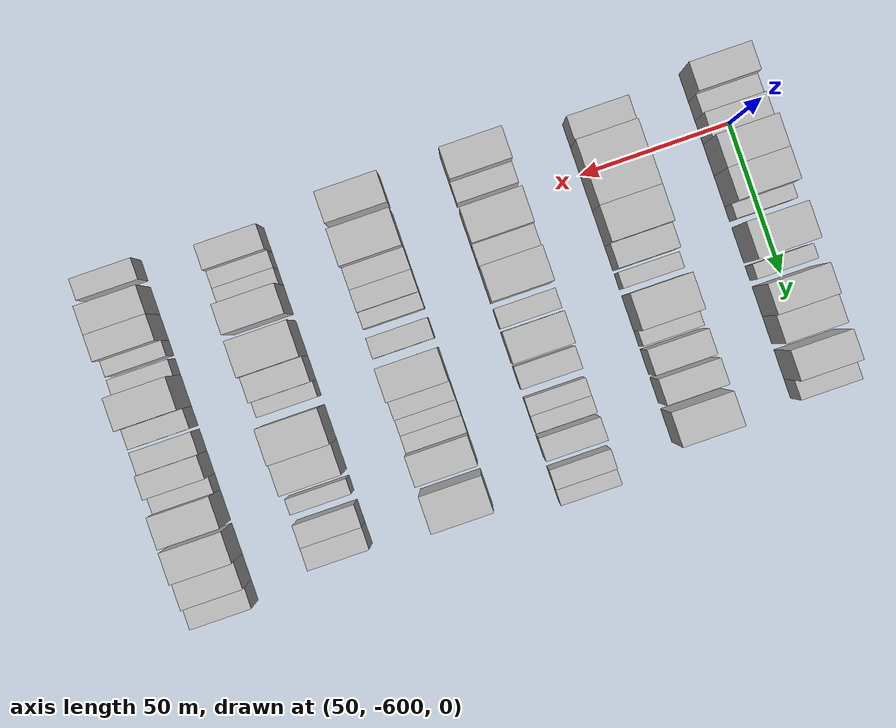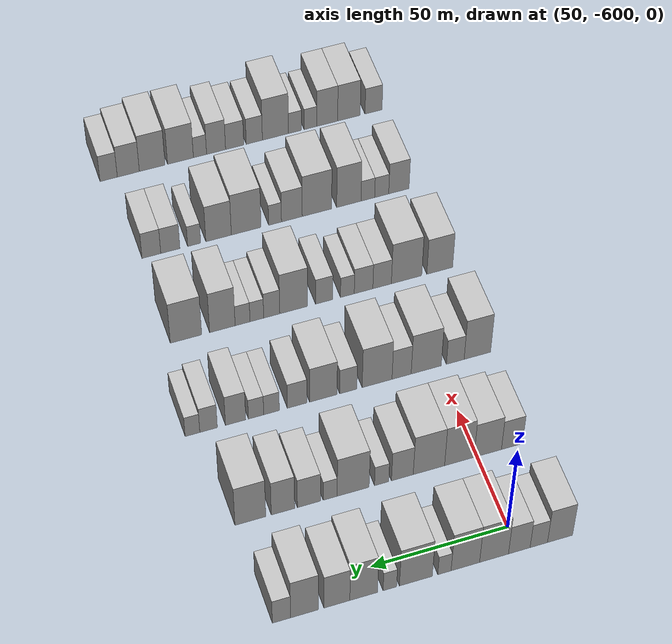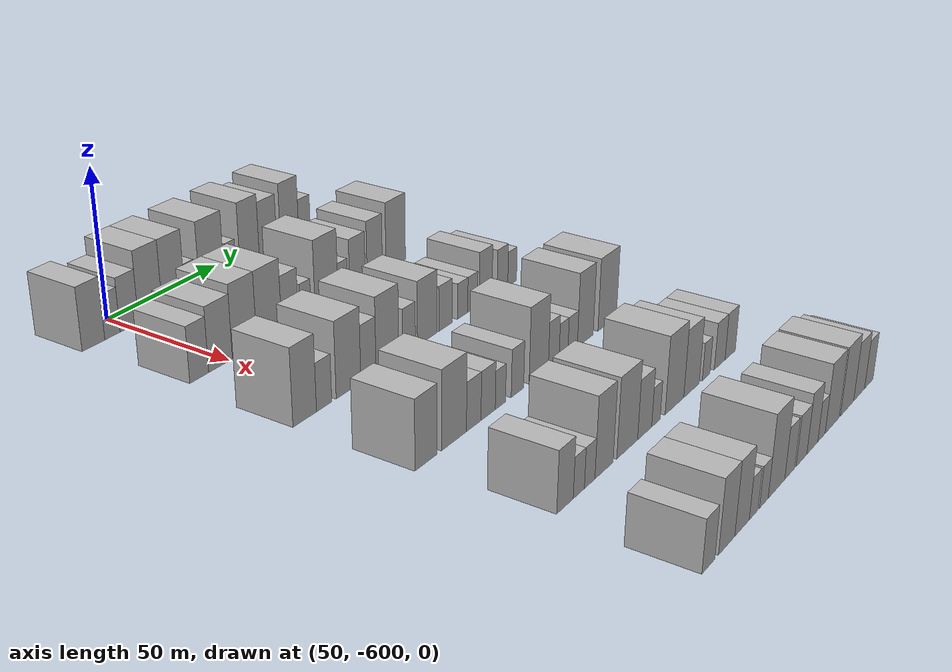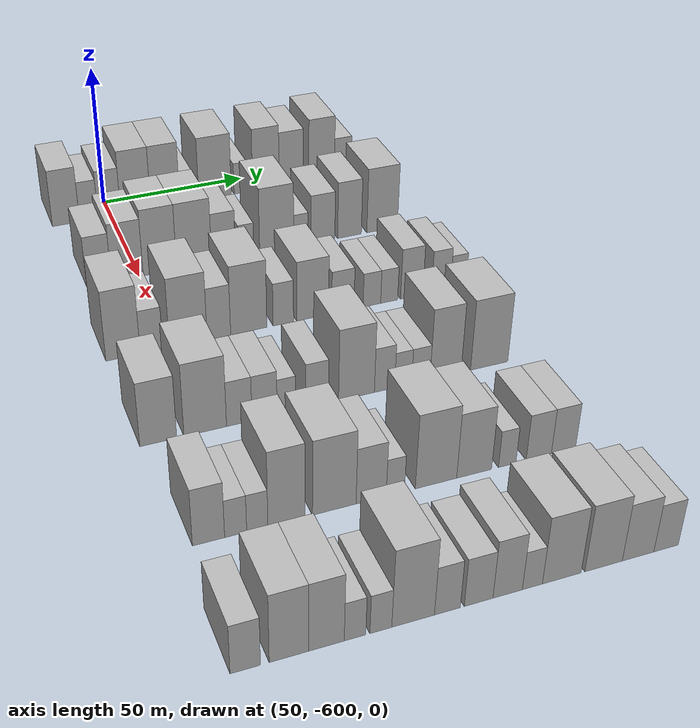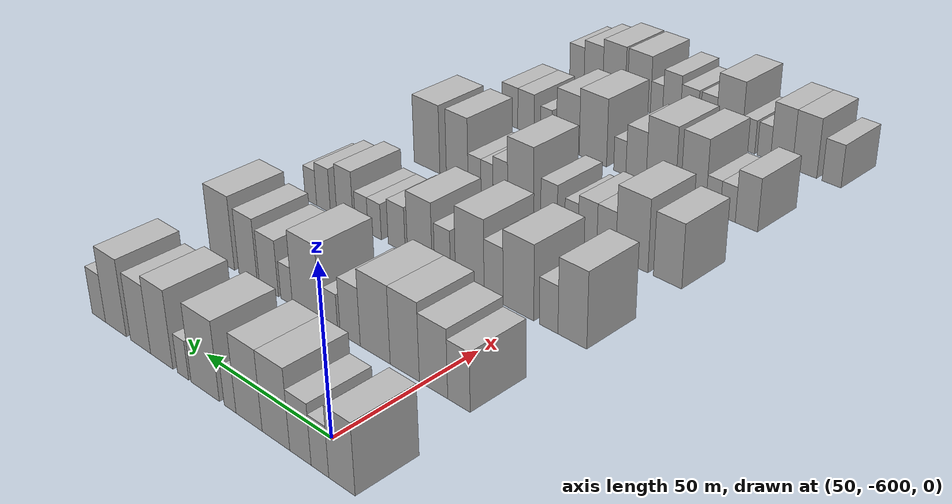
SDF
<sdf version="1.6">
 <world name="default">
  <model name="building_1">
   <static>1</static>
   <pose>50.0000 -615.3688 0 0.000000 0.000000 0.000000</pose>
   <link name="link">
    <pose>0 0 10.50 0 0 0</pose>
    <collision name="collision"><geometry><box><size>20.0000 9.2623 21.0000</size></box></geometry></collision>
    <visual name="visual">
     <cast_shadows>0</cast_shadows>
     <geometry><box><size>20.0000 9.2623 21.0000</size></box></geometry>
     <material>
      <script>
       <uri>model://HANNAS_wall/materials/scripts</uri>
       <uri>model://HANNAS_wall/materials/textures</uri>
       <name>vrc/HANNAS_wall</name>
      </script>
     </material>
    </visual>
   </link>
  </model>
  <model name="building_2">
   <static>1</static>
   <pose>50.0000 -607.5455 0 0.000000 0.000000 0.000000</pose>
   <link name="link">
    <pose>0 0 7.50 0 0 0</pose>
    <collision name="collision"><geometry><box><size>20.0000 6.3844 15.0000</size></box></geometry></collision>
    <visual name="visual">
     <cast_shadows>0</cast_shadows>
     <geometry><box><size>20.0000 6.3844 15.0000</size></box></geometry>
     <material>
      <script>
       <uri>model://HANNAS_wall/materials/scripts</uri>
       <uri>model://HANNAS_wall/materials/textures</uri>
       <name>vrc/HANNAS_wall</name>
      </script>
     </material>
    </visual>
   </link>
  </model>
  <model name="building_3">
   <static>1</static>
   <pose>50.0000 -600.3956 0 0.000000 0.000000 0.000000</pose>
   <link name="link">
    <pose>0 0 9.00 0 0 0</pose>
    <collision name="collision"><geometry><box><size>20.0000 7.9152 18.0000</size></box></geometry></collision>
    <visual name="visual">
     <cast_shadows>0</cast_shadows>
     <geometry><box><size>20.0000 7.9152 18.0000</size></box></geometry>
     <material>
      <script>
       <uri>model://HANNAS_wall/materials/scripts</uri>
       <uri>model://HANNAS_wall/materials/textures</uri>
       <name>vrc/HANNAS_wall</name>
      </script>
     </material>
    </visual>
   </link>
  </model>
  <model name="building_4">
   <static>1</static>
   <pose>50.0000 -591.1614 0 0.000000 0.000000 0.000000</pose>
   <link name="link">
    <pose>0 0 12.00 0 0 0</pose>
    <collision name="collision"><geometry><box><size>20.0000 10.5532 24.0000</size></box></geometry></collision>
    <visual name="visual">
     <cast_shadows>0</cast_shadows>
     <geometry><box><size>20.0000 10.5532 24.0000</size></box></geometry>
     <material>
      <script>
       <uri>model://HANNAS_wall/materials/scripts</uri>
       <uri>model://HANNAS_wall/materials/textures</uri>
       <name>vrc/HANNAS_wall</name>
      </script>
     </material>
    </visual>
   </link>
  </model>
  <model name="building_5">
   <static>1</static>
   <pose>50.0000 -580.7091 0 0.000000 0.000000 0.000000</pose>
   <link name="link">
    <pose>0 0 12.00 0 0 0</pose>
    <collision name="collision"><geometry><box><size>20.0000 10.3514 24.0000</size></box></geometry></collision>
    <visual name="visual">
     <cast_shadows>0</cast_shadows>
     <geometry><box><size>20.0000 10.3514 24.0000</size></box></geometry>
     <material>
      <script>
       <uri>model://HANNAS_wall/materials/scripts</uri>
       <uri>model://HANNAS_wall/materials/textures</uri>
       <name>vrc/HANNAS_wall</name>
      </script>
     </material>
    </visual>
   </link>
  </model>
  <model name="building_6">
   <static>1</static>
   <pose>50.0000 -573.1301 0 0.000000 0.000000 0.000000</pose>
   <link name="link">
    <pose>0 0 6.00 0 0 0</pose>
    <collision name="collision"><geometry><box><size>20.0000 4.8065 12.0000</size></box></geometry></collision>
    <visual name="visual">
     <cast_shadows>0</cast_shadows>
     <geometry><box><size>20.0000 4.8065 12.0000</size></box></geometry>
     <material>
      <script>
       <uri>model://HANNAS_wall/materials/scripts</uri>
       <uri>model://HANNAS_wall/materials/textures</uri>
       <name>vrc/HANNAS_wall</name>
      </script>
     </material>
    </visual>
   </link>
  </model>
  <model name="building_7">
   <static>1</static>
   <pose>50.0000 -562.8004 0 0.000000 0.000000 0.000000</pose>
   <link name="link">
    <pose>0 0 12.00 0 0 0</pose>
    <collision name="collision"><geometry><box><size>20.0000 11.8529 24.0000</size></box></geometry></collision>
    <visual name="visual">
     <cast_shadows>0</cast_shadows>
     <geometry><box><size>20.0000 11.8529 24.0000</size></box></geometry>
     <material>
      <script>
       <uri>model://HANNAS_wall/materials/scripts</uri>
       <uri>model://HANNAS_wall/materials/textures</uri>
       <name>vrc/HANNAS_wall</name>
      </script>
     </material>
    </visual>
   </link>
  </model>
  <model name="building_8">
   <static>1</static>
   <pose>50.0000 -553.4416 0 0.000000 0.000000 0.000000</pose>
   <link name="link">
    <pose>0 0 6.00 0 0 0</pose>
    <collision name="collision"><geometry><box><size>20.0000 4.8649 12.0000</size></box></geometry></collision>
    <visual name="visual">
     <cast_shadows>0</cast_shadows>
     <geometry><box><size>20.0000 4.8649 12.0000</size></box></geometry>
     <material>
      <script>
       <uri>model://HANNAS_wall/materials/scripts</uri>
       <uri>model://HANNAS_wall/materials/textures</uri>
       <name>vrc/HANNAS_wall</name>
      </script>
     </material>
    </visual>
   </link>
  </model>
  <model name="building_9">
   <static>1</static>
   <pose>50.0000 -544.0691 0 0.000000 0.000000 0.000000</pose>
   <link name="link">
    <pose>0 0 12.00 0 0 0</pose>
    <collision name="collision"><geometry><box><size>20.0000 9.8800 24.0000</size></box></geometry></collision>
    <visual name="visual">
     <cast_shadows>0</cast_shadows>
     <geometry><box><size>20.0000 9.8800 24.0000</size></box></geometry>
     <material>
      <script>
       <uri>model://HANNAS_wall/materials/scripts</uri>
       <uri>model://HANNAS_wall/materials/textures</uri>
       <name>vrc/HANNAS_wall</name>
      </script>
     </material>
    </visual>
   </link>
  </model>
  <model name="building_10">
   <static>1</static>
   <pose>50.0000 -534.5308 0 0.000000 0.000000 0.000000</pose>
   <link name="link">
    <pose>0 0 10.50 0 0 0</pose>
    <collision name="collision"><geometry><box><size>20.0000 9.1967 21.0000</size></box></geometry></collision>
    <visual name="visual">
     <cast_shadows>0</cast_shadows>
     <geometry><box><size>20.0000 9.1967 21.0000</size></box></geometry>
     <material>
      <script>
       <uri>model://HANNAS_wall/materials/scripts</uri>
       <uri>model://HANNAS_wall/materials/textures</uri>
       <name>vrc/HANNAS_wall</name>
      </script>
     </material>
    </visual>
   </link>
  </model>
  <model name="building_11">
   <static>1</static>
   <pose>50.0000 -523.0204 0 0.000000 0.000000 0.000000</pose>
   <link name="link">
    <pose>0 0 12.00 0 0 0</pose>
    <collision name="collision"><geometry><box><size>20.0000 9.8240 24.0000</size></box></geometry></collision>
    <visual name="visual">
     <cast_shadows>0</cast_shadows>
     <geometry><box><size>20.0000 9.8240 24.0000</size></box></geometry>
     <material>
      <script>
       <uri>model://HANNAS_wall/materials/scripts</uri>
       <uri>model://HANNAS_wall/materials/textures</uri>
       <name>vrc/HANNAS_wall</name>
      </script>
     </material>
    </visual>
   </link>
  </model>
  <model name="building_12">
   <static>1</static>
   <pose>50.0000 -514.8953 0 0.000000 0.000000 0.000000</pose>
   <link name="link">
    <pose>0 0 7.50 0 0 0</pose>
    <collision name="collision"><geometry><box><size>20.0000 6.4262 15.0000</size></box></geometry></collision>
    <visual name="visual">
     <cast_shadows>0</cast_shadows>
     <geometry><box><size>20.0000 6.4262 15.0000</size></box></geometry>
     <material>
      <script>
       <uri>model://HANNAS_wall/materials/scripts</uri>
       <uri>model://HANNAS_wall/materials/textures</uri>
       <name>vrc/HANNAS_wall</name>
      </script>
     </material>
    </visual>
   </link>
  </model>
  <model name="building_139">
   <static>1</static>
   <pose>90.0000 -613.0240 0 0.000000 0.000000 0.000000</pose>
   <link name="link">
    <pose>0 0 9.00 0 0 0</pose>
    <collision name="collision"><geometry><box><size>20.0000 7.9521 18.0000</size></box></geometry></collision>
    <visual name="visual">
     <cast_shadows>0</cast_shadows>
     <geometry><box><size>20.0000 7.9521 18.0000</size></box></geometry>
     <material>
      <script>
       <uri>model://HANNAS_wall/materials/scripts</uri>
       <uri>model://HANNAS_wall/materials/textures</uri>
       <name>vrc/HANNAS_wall</name>
      </script>
     </material>
    </visual>
   </link>
  </model>
  <model name="building_140">
   <static>1</static>
   <pose>90.0000 -603.8902 0 0.000000 0.000000 0.000000</pose>
   <link name="link">
    <pose>0 0 10.50 0 0 0</pose>
    <collision name="collision"><geometry><box><size>20.0000 10.3154 21.0000</size></box></geometry></collision>
    <visual name="visual">
     <cast_shadows>0</cast_shadows>
     <geometry><box><size>20.0000 10.3154 21.0000</size></box></geometry>
     <material>
      <script>
       <uri>model://HANNAS_wall/materials/scripts</uri>
       <uri>model://HANNAS_wall/materials/textures</uri>
       <name>vrc/HANNAS_wall</name>
      </script>
     </material>
    </visual>
   </link>
  </model>
  <model name="building_141">
   <static>1</static>
   <pose>90.0000 -593.2369 0 0.000000 0.000000 0.000000</pose>
   <link name="link">
    <pose>0 0 12.00 0 0 0</pose>
    <collision name="collision"><geometry><box><size>20.0000 10.9912 24.0000</size></box></geometry></collision>
    <visual name="visual">
     <cast_shadows>0</cast_shadows>
     <geometry><box><size>20.0000 10.9912 24.0000</size></box></geometry>
     <material>
      <script>
       <uri>model://HANNAS_wall/materials/scripts</uri>
       <uri>model://HANNAS_wall/materials/textures</uri>
       <name>vrc/HANNAS_wall</name>
      </script>
     </material>
    </visual>
   </link>
  </model>
  <model name="building_142">
   <static>1</static>
   <pose>90.0000 -581.9039 0 0.000000 0.000000 0.000000</pose>
   <link name="link">
    <pose>0 0 12.00 0 0 0</pose>
    <collision name="collision"><geometry><box><size>20.0000 11.6748 24.0000</size></box></geometry></collision>
    <visual name="visual">
     <cast_shadows>0</cast_shadows>
     <geometry><box><size>20.0000 11.6748 24.0000</size></box></geometry>
     <material>
      <script>
       <uri>model://HANNAS_wall/materials/scripts</uri>
       <uri>model://HANNAS_wall/materials/textures</uri>
       <name>vrc/HANNAS_wall</name>
      </script>
     </material>
    </visual>
   </link>
  </model>
  <model name="building_143">
   <static>1</static>
   <pose>90.0000 -572.0379 0 0.000000 0.000000 0.000000</pose>
   <link name="link">
    <pose>0 0 9.00 0 0 0</pose>
    <collision name="collision"><geometry><box><size>20.0000 8.0572 18.0000</size></box></geometry></collision>
    <visual name="visual">
     <cast_shadows>0</cast_shadows>
     <geometry><box><size>20.0000 8.0572 18.0000</size></box></geometry>
     <material>
      <script>
       <uri>model://HANNAS_wall/materials/scripts</uri>
       <uri>model://HANNAS_wall/materials/textures</uri>
       <name>vrc/HANNAS_wall</name>
      </script>
     </material>
    </visual>
   </link>
  </model>
  <model name="building_144">
   <static>1</static>
   <pose>90.0000 -564.3774 0 0.000000 0.000000 0.000000</pose>
   <link name="link">
    <pose>0 0 6.00 0 0 0</pose>
    <collision name="collision"><geometry><box><size>20.0000 5.2637 12.0000</size></box></geometry></collision>
    <visual name="visual">
     <cast_shadows>0</cast_shadows>
     <geometry><box><size>20.0000 5.2637 12.0000</size></box></geometry>
     <material>
      <script>
       <uri>model://HANNAS_wall/materials/scripts</uri>
       <uri>model://HANNAS_wall/materials/textures</uri>
       <name>vrc/HANNAS_wall</name>
      </script>
     </material>
    </visual>
   </link>
  </model>
  <model name="building_145">
   <static>1</static>
   <pose>90.0000 -553.8631 0 0.000000 0.000000 0.000000</pose>
   <link name="link">
    <pose>0 0 12.00 0 0 0</pose>
    <collision name="collision"><geometry><box><size>20.0000 11.7648 24.0000</size></box></geometry></collision>
    <visual name="visual">
     <cast_shadows>0</cast_shadows>
     <geometry><box><size>20.0000 11.7648 24.0000</size></box></geometry>
     <material>
      <script>
       <uri>model://HANNAS_wall/materials/scripts</uri>
       <uri>model://HANNAS_wall/materials/textures</uri>
       <name>vrc/HANNAS_wall</name>
      </script>
     </material>
    </visual>
   </link>
  </model>
  <model name="building_146">
   <static>1</static>
   <pose>90.0000 -545.4332 0 0.000000 0.000000 0.000000</pose>
   <link name="link">
    <pose>0 0 6.00 0 0 0</pose>
    <collision name="collision"><geometry><box><size>20.0000 5.0950 12.0000</size></box></geometry></collision>
    <visual name="visual">
     <cast_shadows>0</cast_shadows>
     <geometry><box><size>20.0000 5.0950 12.0000</size></box></geometry>
     <material>
      <script>
       <uri>model://HANNAS_wall/materials/scripts</uri>
       <uri>model://HANNAS_wall/materials/textures</uri>
       <name>vrc/HANNAS_wall</name>
      </script>
     </material>
    </visual>
   </link>
  </model>
  <model name="building_147">
   <static>1</static>
   <pose>90.0000 -537.6811 0 0.000000 0.000000 0.000000</pose>
   <link name="link">
    <pose>0 0 9.00 0 0 0</pose>
    <collision name="collision"><geometry><box><size>20.0000 8.4092 18.0000</size></box></geometry></collision>
    <visual name="visual">
     <cast_shadows>0</cast_shadows>
     <geometry><box><size>20.0000 8.4092 18.0000</size></box></geometry>
     <material>
      <script>
       <uri>model://HANNAS_wall/materials/scripts</uri>
       <uri>model://HANNAS_wall/materials/textures</uri>
       <name>vrc/HANNAS_wall</name>
      </script>
     </material>
    </visual>
   </link>
  </model>
  <model name="building_148">
   <static>1</static>
   <pose>90.0000 -528.2325 0 0.000000 0.000000 0.000000</pose>
   <link name="link">
    <pose>0 0 10.50 0 0 0</pose>
    <collision name="collision"><geometry><box><size>20.0000 8.4880 21.0000</size></box></geometry></collision>
    <visual name="visual">
     <cast_shadows>0</cast_shadows>
     <geometry><box><size>20.0000 8.4880 21.0000</size></box></geometry>
     <material>
      <script>
       <uri>model://HANNAS_wall/materials/scripts</uri>
       <uri>model://HANNAS_wall/materials/textures</uri>
       <name>vrc/HANNAS_wall</name>
      </script>
     </material>
    </visual>
   </link>
  </model>
  <model name="building_149">
   <static>1</static>
   <pose>90.0000 -516.4187 0 0.000000 0.000000 0.000000</pose>
   <link name="link">
    <pose>0 0 12.00 0 0 0</pose>
    <collision name="collision"><geometry><box><size>20.0000 11.1395 24.0000</size></box></geometry></collision>
    <visual name="visual">
     <cast_shadows>0</cast_shadows>
     <geometry><box><size>20.0000 11.1395 24.0000</size></box></geometry>
     <material>
      <script>
       <uri>model://HANNAS_wall/materials/scripts</uri>
       <uri>model://HANNAS_wall/materials/textures</uri>
       <name>vrc/HANNAS_wall</name>
      </script>
     </material>
    </visual>
   </link>
  </model>
  <model name="building_275">
   <static>1</static>
   <pose>130.0000 -614.8962 0 0.000000 0.000000 0.000000</pose>
   <link name="link">
    <pose>0 0 12.00 0 0 0</pose>
    <collision name="collision"><geometry><box><size>20.0000 10.2075 24.0000</size></box></geometry></collision>
    <visual name="visual">
     <cast_shadows>0</cast_shadows>
     <geometry><box><size>20.0000 10.2075 24.0000</size></box></geometry>
     <material>
      <script>
       <uri>model://HANNAS_wall/materials/scripts</uri>
       <uri>model://HANNAS_wall/materials/textures</uri>
       <name>vrc/HANNAS_wall</name>
      </script>
     </material>
    </visual>
   </link>
  </model>
  <model name="building_276">
   <static>1</static>
   <pose>130.0000 -606.3934 0 0.000000 0.000000 0.000000</pose>
   <link name="link">
    <pose>0 0 7.50 0 0 0</pose>
    <collision name="collision"><geometry><box><size>20.0000 6.7981 15.0000</size></box></geometry></collision>
    <visual name="visual">
     <cast_shadows>0</cast_shadows>
     <geometry><box><size>20.0000 6.7981 15.0000</size></box></geometry>
     <material>
      <script>
       <uri>model://HANNAS_wall/materials/scripts</uri>
       <uri>model://HANNAS_wall/materials/textures</uri>
       <name>vrc/HANNAS_wall</name>
      </script>
     </material>
    </visual>
   </link>
  </model>
  <model name="building_277">
   <static>1</static>
   <pose>130.0000 -595.2436 0 0.000000 0.000000 0.000000</pose>
   <link name="link">
    <pose>0 0 12.00 0 0 0</pose>
    <collision name="collision"><geometry><box><size>20.0000 11.5014 24.0000</size></box></geometry></collision>
    <visual name="visual">
     <cast_shadows>0</cast_shadows>
     <geometry><box><size>20.0000 11.5014 24.0000</size></box></geometry>
     <material>
      <script>
       <uri>model://HANNAS_wall/materials/scripts</uri>
       <uri>model://HANNAS_wall/materials/textures</uri>
       <name>vrc/HANNAS_wall</name>
      </script>
     </material>
    </visual>
   </link>
  </model>
  <model name="building_278">
   <static>1</static>
   <pose>130.0000 -585.8431 0 0.000000 0.000000 0.000000</pose>
   <link name="link">
    <pose>0 0 9.00 0 0 0</pose>
    <collision name="collision"><geometry><box><size>20.0000 7.2997 18.0000</size></box></geometry></collision>
    <visual name="visual">
     <cast_shadows>0</cast_shadows>
     <geometry><box><size>20.0000 7.2997 18.0000</size></box></geometry>
     <material>
      <script>
       <uri>model://HANNAS_wall/materials/scripts</uri>
       <uri>model://HANNAS_wall/materials/textures</uri>
       <name>vrc/HANNAS_wall</name>
      </script>
     </material>
    </visual>
   </link>
  </model>
  <model name="building_279">
   <static>1</static>
   <pose>130.0000 -576.5219 0 0.000000 0.000000 0.000000</pose>
   <link name="link">
    <pose>0 0 12.00 0 0 0</pose>
    <collision name="collision"><geometry><box><size>20.0000 11.3426 24.0000</size></box></geometry></collision>
    <visual name="visual">
     <cast_shadows>0</cast_shadows>
     <geometry><box><size>20.0000 11.3426 24.0000</size></box></geometry>
     <material>
      <script>
       <uri>model://HANNAS_wall/materials/scripts</uri>
       <uri>model://HANNAS_wall/materials/textures</uri>
       <name>vrc/HANNAS_wall</name>
      </script>
     </material>
    </visual>
   </link>
  </model>
  <model name="building_280">
   <static>1</static>
   <pose>130.0000 -565.6041 0 0.000000 0.000000 0.000000</pose>
   <link name="link">
    <pose>0 0 7.50 0 0 0</pose>
    <collision name="collision"><geometry><box><size>20.0000 6.4931 15.0000</size></box></geometry></collision>
    <visual name="visual">
     <cast_shadows>0</cast_shadows>
     <geometry><box><size>20.0000 6.4931 15.0000</size></box></geometry>
     <material>
      <script>
       <uri>model://HANNAS_wall/materials/scripts</uri>
       <uri>model://HANNAS_wall/materials/textures</uri>
       <name>vrc/HANNAS_wall</name>
      </script>
     </material>
    </visual>
   </link>
  </model>
  <model name="building_281">
   <static>1</static>
   <pose>130.0000 -556.1921 0 0.000000 0.000000 0.000000</pose>
   <link name="link">
    <pose>0 0 10.50 0 0 0</pose>
    <collision name="collision"><geometry><box><size>20.0000 10.3309 21.0000</size></box></geometry></collision>
    <visual name="visual">
     <cast_shadows>0</cast_shadows>
     <geometry><box><size>20.0000 10.3309 21.0000</size></box></geometry>
     <material>
      <script>
       <uri>model://HANNAS_wall/materials/scripts</uri>
       <uri>model://HANNAS_wall/materials/textures</uri>
       <name>vrc/HANNAS_wall</name>
      </script>
     </material>
    </visual>
   </link>
  </model>
  <model name="building_282">
   <static>1</static>
   <pose>130.0000 -546.3594 0 0.000000 0.000000 0.000000</pose>
   <link name="link">
    <pose>0 0 7.50 0 0 0</pose>
    <collision name="collision"><geometry><box><size>20.0000 7.3345 15.0000</size></box></geometry></collision>
    <visual name="visual">
     <cast_shadows>0</cast_shadows>
     <geometry><box><size>20.0000 7.3345 15.0000</size></box></geometry>
     <material>
      <script>
       <uri>model://HANNAS_wall/materials/scripts</uri>
       <uri>model://HANNAS_wall/materials/textures</uri>
       <name>vrc/HANNAS_wall</name>
      </script>
     </material>
    </visual>
   </link>
  </model>
  <model name="building_283">
   <static>1</static>
   <pose>130.0000 -536.7678 0 0.000000 0.000000 0.000000</pose>
   <link name="link">
    <pose>0 0 6.00 0 0 0</pose>
    <collision name="collision"><geometry><box><size>20.0000 5.8488 12.0000</size></box></geometry></collision>
    <visual name="visual">
     <cast_shadows>0</cast_shadows>
     <geometry><box><size>20.0000 5.8488 12.0000</size></box></geometry>
     <material>
      <script>
       <uri>model://HANNAS_wall/materials/scripts</uri>
       <uri>model://HANNAS_wall/materials/textures</uri>
       <name>vrc/HANNAS_wall</name>
      </script>
     </material>
    </visual>
   </link>
  </model>
  <model name="building_284">
   <static>1</static>
   <pose>130.0000 -531.0027 0 0.000000 0.000000 0.000000</pose>
   <link name="link">
    <pose>0 0 6.00 0 0 0</pose>
    <collision name="collision"><geometry><box><size>20.0000 5.6814 12.0000</size></box></geometry></collision>
    <visual name="visual">
     <cast_shadows>0</cast_shadows>
     <geometry><box><size>20.0000 5.6814 12.0000</size></box></geometry>
     <material>
      <script>
       <uri>model://HANNAS_wall/materials/scripts</uri>
       <uri>model://HANNAS_wall/materials/textures</uri>
       <name>vrc/HANNAS_wall</name>
      </script>
     </material>
    </visual>
   </link>
  </model>
  <model name="building_285">
   <static>1</static>
   <pose>130.0000 -523.3986 0 0.000000 0.000000 0.000000</pose>
   <link name="link">
    <pose>0 0 9.00 0 0 0</pose>
    <collision name="collision"><geometry><box><size>20.0000 7.5269 18.0000</size></box></geometry></collision>
    <visual name="visual">
     <cast_shadows>0</cast_shadows>
     <geometry><box><size>20.0000 7.5269 18.0000</size></box></geometry>
     <material>
      <script>
       <uri>model://HANNAS_wall/materials/scripts</uri>
       <uri>model://HANNAS_wall/materials/textures</uri>
       <name>vrc/HANNAS_wall</name>
      </script>
     </material>
    </visual>
   </link>
  </model>
  <model name="building_286">
   <static>1</static>
   <pose>130.0000 -513.3895 0 0.000000 0.000000 0.000000</pose>
   <link name="link">
    <pose>0 0 7.50 0 0 0</pose>
    <collision name="collision"><geometry><box><size>20.0000 6.4912 15.0000</size></box></geometry></collision>
    <visual name="visual">
     <cast_shadows>0</cast_shadows>
     <geometry><box><size>20.0000 6.4912 15.0000</size></box></geometry>
     <material>
      <script>
       <uri>model://HANNAS_wall/materials/scripts</uri>
       <uri>model://HANNAS_wall/materials/textures</uri>
       <name>vrc/HANNAS_wall</name>
      </script>
     </material>
    </visual>
   </link>
  </model>
  <model name="building_287">
   <static>1</static>
   <pose>130.0000 -507.4338 0 0.000000 0.000000 0.000000</pose>
   <link name="link">
    <pose>0 0 6.00 0 0 0</pose>
    <collision name="collision"><geometry><box><size>20.0000 5.4203 12.0000</size></box></geometry></collision>
    <visual name="visual">
     <cast_shadows>0</cast_shadows>
     <geometry><box><size>20.0000 5.4203 12.0000</size></box></geometry>
     <material>
      <script>
       <uri>model://HANNAS_wall/materials/scripts</uri>
       <uri>model://HANNAS_wall/materials/textures</uri>
       <name>vrc/HANNAS_wall</name>
      </script>
     </material>
    </visual>
   </link>
  </model>
  <model name="building_407">
   <static>1</static>
   <pose>170.0000 -614.9220 0 0.000000 0.000000 0.000000</pose>
   <link name="link">
    <pose>0 0 10.50 0 0 0</pose>
    <collision name="collision"><geometry><box><size>20.0000 10.1559 21.0000</size></box></geometry></collision>
    <visual name="visual">
     <cast_shadows>0</cast_shadows>
     <geometry><box><size>20.0000 10.1559 21.0000</size></box></geometry>
     <material>
      <script>
       <uri>model://HANNAS_wall/materials/scripts</uri>
       <uri>model://HANNAS_wall/materials/textures</uri>
       <name>vrc/HANNAS_wall</name>
      </script>
     </material>
    </visual>
   </link>
  </model>
  <model name="building_408">
   <static>1</static>
   <pose>170.0000 -601.8810 0 0.000000 0.000000 0.000000</pose>
   <link name="link">
    <pose>0 0 12.00 0 0 0</pose>
    <collision name="collision"><geometry><box><size>20.0000 11.9262 24.0000</size></box></geometry></collision>
    <visual name="visual">
     <cast_shadows>0</cast_shadows>
     <geometry><box><size>20.0000 11.9262 24.0000</size></box></geometry>
     <material>
      <script>
       <uri>model://HANNAS_wall/materials/scripts</uri>
       <uri>model://HANNAS_wall/materials/textures</uri>
       <name>vrc/HANNAS_wall</name>
      </script>
     </material>
    </visual>
   </link>
  </model>
  <model name="building_409">
   <static>1</static>
   <pose>170.0000 -592.3065 0 0.000000 0.000000 0.000000</pose>
   <link name="link">
    <pose>0 0 7.50 0 0 0</pose>
    <collision name="collision"><geometry><box><size>20.0000 7.2228 15.0000</size></box></geometry></collision>
    <visual name="visual">
     <cast_shadows>0</cast_shadows>
     <geometry><box><size>20.0000 7.2228 15.0000</size></box></geometry>
     <material>
      <script>
       <uri>model://HANNAS_wall/materials/scripts</uri>
       <uri>model://HANNAS_wall/materials/textures</uri>
       <name>vrc/HANNAS_wall</name>
      </script>
     </material>
    </visual>
   </link>
  </model>
  <model name="building_410">
   <static>1</static>
   <pose>170.0000 -585.0676 0 0.000000 0.000000 0.000000</pose>
   <link name="link">
    <pose>0 0 7.50 0 0 0</pose>
    <collision name="collision"><geometry><box><size>20.0000 7.2550 15.0000</size></box></geometry></collision>
    <visual name="visual">
     <cast_shadows>0</cast_shadows>
     <geometry><box><size>20.0000 7.2550 15.0000</size></box></geometry>
     <material>
      <script>
       <uri>model://HANNAS_wall/materials/scripts</uri>
       <uri>model://HANNAS_wall/materials/textures</uri>
       <name>vrc/HANNAS_wall</name>
      </script>
     </material>
    </visual>
   </link>
  </model>
  <model name="building_411">
   <static>1</static>
   <pose>170.0000 -578.7611 0 0.000000 0.000000 0.000000</pose>
   <link name="link">
    <pose>0 0 6.00 0 0 0</pose>
    <collision name="collision"><geometry><box><size>20.0000 5.3580 12.0000</size></box></geometry></collision>
    <visual name="visual">
     <cast_shadows>0</cast_shadows>
     <geometry><box><size>20.0000 5.3580 12.0000</size></box></geometry>
     <material>
      <script>
       <uri>model://HANNAS_wall/materials/scripts</uri>
       <uri>model://HANNAS_wall/materials/textures</uri>
       <name>vrc/HANNAS_wall</name>
      </script>
     </material>
    </visual>
   </link>
  </model>
  <model name="building_412">
   <static>1</static>
   <pose>170.0000 -569.7401 0 0.000000 0.000000 0.000000</pose>
   <link name="link">
    <pose>0 0 7.50 0 0 0</pose>
    <collision name="collision"><geometry><box><size>20.0000 6.6840 15.0000</size></box></geometry></collision>
    <visual name="visual">
     <cast_shadows>0</cast_shadows>
     <geometry><box><size>20.0000 6.6840 15.0000</size></box></geometry>
     <material>
      <script>
       <uri>model://HANNAS_wall/materials/scripts</uri>
       <uri>model://HANNAS_wall/materials/textures</uri>
       <name>vrc/HANNAS_wall</name>
      </script>
     </material>
    </visual>
   </link>
  </model>
  <model name="building_413">
   <static>1</static>
   <pose>170.0000 -558.0117 0 0.000000 0.000000 0.000000</pose>
   <link name="link">
    <pose>0 0 12.00 0 0 0</pose>
    <collision name="collision"><geometry><box><size>20.0000 10.7730 24.0000</size></box></geometry></collision>
    <visual name="visual">
     <cast_shadows>0</cast_shadows>
     <geometry><box><size>20.0000 10.7730 24.0000</size></box></geometry>
     <material>
      <script>
       <uri>model://HANNAS_wall/materials/scripts</uri>
       <uri>model://HANNAS_wall/materials/textures</uri>
       <name>vrc/HANNAS_wall</name>
      </script>
     </material>
    </visual>
   </link>
  </model>
  <model name="building_414">
   <static>1</static>
   <pose>170.0000 -549.5357 0 0.000000 0.000000 0.000000</pose>
   <link name="link">
    <pose>0 0 7.50 0 0 0</pose>
    <collision name="collision"><geometry><box><size>20.0000 6.1789 15.0000</size></box></geometry></collision>
    <visual name="visual">
     <cast_shadows>0</cast_shadows>
     <geometry><box><size>20.0000 6.1789 15.0000</size></box></geometry>
     <material>
      <script>
       <uri>model://HANNAS_wall/materials/scripts</uri>
       <uri>model://HANNAS_wall/materials/textures</uri>
       <name>vrc/HANNAS_wall</name>
      </script>
     </material>
    </visual>
   </link>
  </model>
  <model name="building_415">
   <static>1</static>
   <pose>170.0000 -543.8286 0 0.000000 0.000000 0.000000</pose>
   <link name="link">
    <pose>0 0 6.00 0 0 0</pose>
    <collision name="collision"><geometry><box><size>20.0000 5.2354 12.0000</size></box></geometry></collision>
    <visual name="visual">
     <cast_shadows>0</cast_shadows>
     <geometry><box><size>20.0000 5.2354 12.0000</size></box></geometry>
     <material>
      <script>
       <uri>model://HANNAS_wall/materials/scripts</uri>
       <uri>model://HANNAS_wall/materials/textures</uri>
       <name>vrc/HANNAS_wall</name>
      </script>
     </material>
    </visual>
   </link>
  </model>
  <model name="building_416">
   <static>1</static>
   <pose>170.0000 -538.3727 0 0.000000 0.000000 0.000000</pose>
   <link name="link">
    <pose>0 0 6.00 0 0 0</pose>
    <collision name="collision"><geometry><box><size>20.0000 5.6764 12.0000</size></box></geometry></collision>
    <visual name="visual">
     <cast_shadows>0</cast_shadows>
     <geometry><box><size>20.0000 5.6764 12.0000</size></box></geometry>
     <material>
      <script>
       <uri>model://HANNAS_wall/materials/scripts</uri>
       <uri>model://HANNAS_wall/materials/textures</uri>
       <name>vrc/HANNAS_wall</name>
      </script>
     </material>
    </visual>
   </link>
  </model>
  <model name="building_417">
   <static>1</static>
   <pose>170.0000 -530.6658 0 0.000000 0.000000 0.000000</pose>
   <link name="link">
    <pose>0 0 12.00 0 0 0</pose>
    <collision name="collision"><geometry><box><size>20.0000 9.7374 24.0000</size></box></geometry></collision>
    <visual name="visual">
     <cast_shadows>0</cast_shadows>
     <geometry><box><size>20.0000 9.7374 24.0000</size></box></geometry>
     <material>
      <script>
       <uri>model://HANNAS_wall/materials/scripts</uri>
       <uri>model://HANNAS_wall/materials/textures</uri>
       <name>vrc/HANNAS_wall</name>
      </script>
     </material>
    </visual>
   </link>
  </model>
  <model name="building_418">
   <static>1</static>
   <pose>170.0000 -516.8474 0 0.000000 0.000000 0.000000</pose>
   <link name="link">
    <pose>0 0 12.00 0 0 0</pose>
    <collision name="collision"><geometry><box><size>20.0000 11.8993 24.0000</size></box></geometry></collision>
    <visual name="visual">
     <cast_shadows>0</cast_shadows>
     <geometry><box><size>20.0000 11.8993 24.0000</size></box></geometry>
     <material>
      <script>
       <uri>model://HANNAS_wall/materials/scripts</uri>
       <uri>model://HANNAS_wall/materials/textures</uri>
       <name>vrc/HANNAS_wall</name>
      </script>
     </material>
    </visual>
   </link>
  </model>
  <model name="building_544">
   <static>1</static>
   <pose>210.0000 -612.9144 0 0.000000 0.000000 0.000000</pose>
   <link name="link">
    <pose>0 0 9.00 0 0 0</pose>
    <collision name="collision"><geometry><box><size>20.0000 8.1713 18.0000</size></box></geometry></collision>
    <visual name="visual">
     <cast_shadows>0</cast_shadows>
     <geometry><box><size>20.0000 8.1713 18.0000</size></box></geometry>
     <material>
      <script>
       <uri>model://HANNAS_wall/materials/scripts</uri>
       <uri>model://HANNAS_wall/materials/textures</uri>
       <name>vrc/HANNAS_wall</name>
      </script>
     </material>
    </visual>
   </link>
  </model>
  <model name="building_545">
   <static>1</static>
   <pose>210.0000 -606.0038 0 0.000000 0.000000 0.000000</pose>
   <link name="link">
    <pose>0 0 6.00 0 0 0</pose>
    <collision name="collision"><geometry><box><size>20.0000 5.6498 12.0000</size></box></geometry></collision>
    <visual name="visual">
     <cast_shadows>0</cast_shadows>
     <geometry><box><size>20.0000 5.6498 12.0000</size></box></geometry>
     <material>
      <script>
       <uri>model://HANNAS_wall/materials/scripts</uri>
       <uri>model://HANNAS_wall/materials/textures</uri>
       <name>vrc/HANNAS_wall</name>
      </script>
     </material>
    </visual>
   </link>
  </model>
  <model name="building_546">
   <static>1</static>
   <pose>210.0000 -600.4449 0 0.000000 0.000000 0.000000</pose>
   <link name="link">
    <pose>0 0 6.00 0 0 0</pose>
    <collision name="collision"><geometry><box><size>20.0000 5.4678 12.0000</size></box></geometry></collision>
    <visual name="visual">
     <cast_shadows>0</cast_shadows>
     <geometry><box><size>20.0000 5.4678 12.0000</size></box></geometry>
     <material>
      <script>
       <uri>model://HANNAS_wall/materials/scripts</uri>
       <uri>model://HANNAS_wall/materials/textures</uri>
       <name>vrc/HANNAS_wall</name>
      </script>
     </material>
    </visual>
   </link>
  </model>
  <model name="building_547">
   <static>1</static>
   <pose>210.0000 -592.8477 0 0.000000 0.000000 0.000000</pose>
   <link name="link">
    <pose>0 0 12.00 0 0 0</pose>
    <collision name="collision"><geometry><box><size>20.0000 9.7267 24.0000</size></box></geometry></collision>
    <visual name="visual">
     <cast_shadows>0</cast_shadows>
     <geometry><box><size>20.0000 9.7267 24.0000</size></box></geometry>
     <material>
      <script>
       <uri>model://HANNAS_wall/materials/scripts</uri>
       <uri>model://HANNAS_wall/materials/textures</uri>
       <name>vrc/HANNAS_wall</name>
      </script>
     </material>
    </visual>
   </link>
  </model>
  <model name="building_548">
   <static>1</static>
   <pose>210.0000 -580.1432 0 0.000000 0.000000 0.000000</pose>
   <link name="link">
    <pose>0 0 12.00 0 0 0</pose>
    <collision name="collision"><geometry><box><size>20.0000 11.6823 24.0000</size></box></geometry></collision>
    <visual name="visual">
     <cast_shadows>0</cast_shadows>
     <geometry><box><size>20.0000 11.6823 24.0000</size></box></geometry>
     <material>
      <script>
       <uri>model://HANNAS_wall/materials/scripts</uri>
       <uri>model://HANNAS_wall/materials/textures</uri>
       <name>vrc/HANNAS_wall</name>
      </script>
     </material>
    </visual>
   </link>
  </model>
  <model name="building_549">
   <static>1</static>
   <pose>210.0000 -570.1818 0 0.000000 0.000000 0.000000</pose>
   <link name="link">
    <pose>0 0 9.00 0 0 0</pose>
    <collision name="collision"><geometry><box><size>20.0000 8.2405 18.0000</size></box></geometry></collision>
    <visual name="visual">
     <cast_shadows>0</cast_shadows>
     <geometry><box><size>20.0000 8.2405 18.0000</size></box></geometry>
     <material>
      <script>
       <uri>model://HANNAS_wall/materials/scripts</uri>
       <uri>model://HANNAS_wall/materials/textures</uri>
       <name>vrc/HANNAS_wall</name>
      </script>
     </material>
    </visual>
   </link>
  </model>
  <model name="building_550">
   <static>1</static>
   <pose>210.0000 -563.5375 0 0.000000 0.000000 0.000000</pose>
   <link name="link">
    <pose>0 0 6.00 0 0 0</pose>
    <collision name="collision"><geometry><box><size>20.0000 5.0482 12.0000</size></box></geometry></collision>
    <visual name="visual">
     <cast_shadows>0</cast_shadows>
     <geometry><box><size>20.0000 5.0482 12.0000</size></box></geometry>
     <material>
      <script>
       <uri>model://HANNAS_wall/materials/scripts</uri>
       <uri>model://HANNAS_wall/materials/textures</uri>
       <name>vrc/HANNAS_wall</name>
      </script>
     </material>
    </visual>
   </link>
  </model>
  <model name="building_551">
   <static>1</static>
   <pose>210.0000 -552.1813 0 0.000000 0.000000 0.000000</pose>
   <link name="link">
    <pose>0 0 12.00 0 0 0</pose>
    <collision name="collision"><geometry><box><size>20.0000 11.6643 24.0000</size></box></geometry></collision>
    <visual name="visual">
     <cast_shadows>0</cast_shadows>
     <geometry><box><size>20.0000 11.6643 24.0000</size></box></geometry>
     <material>
      <script>
       <uri>model://HANNAS_wall/materials/scripts</uri>
       <uri>model://HANNAS_wall/materials/textures</uri>
       <name>vrc/HANNAS_wall</name>
      </script>
     </material>
    </visual>
   </link>
  </model>
  <model name="building_552">
   <static>1</static>
   <pose>210.0000 -541.3539 0 0.000000 0.000000 0.000000</pose>
   <link name="link">
    <pose>0 0 10.50 0 0 0</pose>
    <collision name="collision"><geometry><box><size>20.0000 9.9904 21.0000</size></box></geometry></collision>
    <visual name="visual">
     <cast_shadows>0</cast_shadows>
     <geometry><box><size>20.0000 9.9904 21.0000</size></box></geometry>
     <material>
      <script>
       <uri>model://HANNAS_wall/materials/scripts</uri>
       <uri>model://HANNAS_wall/materials/textures</uri>
       <name>vrc/HANNAS_wall</name>
      </script>
     </material>
    </visual>
   </link>
  </model>
  <model name="building_553">
   <static>1</static>
   <pose>210.0000 -531.8138 0 0.000000 0.000000 0.000000</pose>
   <link name="link">
    <pose>0 0 6.00 0 0 0</pose>
    <collision name="collision"><geometry><box><size>20.0000 5.0897 12.0000</size></box></geometry></collision>
    <visual name="visual">
     <cast_shadows>0</cast_shadows>
     <geometry><box><size>20.0000 5.0897 12.0000</size></box></geometry>
     <material>
      <script>
       <uri>model://HANNAS_wall/materials/scripts</uri>
       <uri>model://HANNAS_wall/materials/textures</uri>
       <name>vrc/HANNAS_wall</name>
      </script>
     </material>
    </visual>
   </link>
  </model>
  <model name="building_554">
   <static>1</static>
   <pose>210.0000 -522.5503 0 0.000000 0.000000 0.000000</pose>
   <link name="link">
    <pose>0 0 7.50 0 0 0</pose>
    <collision name="collision"><geometry><box><size>20.0000 7.4373 15.0000</size></box></geometry></collision>
    <visual name="visual">
     <cast_shadows>0</cast_shadows>
     <geometry><box><size>20.0000 7.4373 15.0000</size></box></geometry>
     <material>
      <script>
       <uri>model://HANNAS_wall/materials/scripts</uri>
       <uri>model://HANNAS_wall/materials/textures</uri>
       <name>vrc/HANNAS_wall</name>
      </script>
     </material>
    </visual>
   </link>
  </model>
  <model name="building_555">
   <static>1</static>
   <pose>210.0000 -515.1982 0 0.000000 0.000000 0.000000</pose>
   <link name="link">
    <pose>0 0 7.50 0 0 0</pose>
    <collision name="collision"><geometry><box><size>20.0000 7.2669 15.0000</size></box></geometry></collision>
    <visual name="visual">
     <cast_shadows>0</cast_shadows>
     <geometry><box><size>20.0000 7.2669 15.0000</size></box></geometry>
     <material>
      <script>
       <uri>model://HANNAS_wall/materials/scripts</uri>
       <uri>model://HANNAS_wall/materials/textures</uri>
       <name>vrc/HANNAS_wall</name>
      </script>
     </material>
    </visual>
   </link>
  </model>
  <model name="building_686">
   <static>1</static>
   <pose>250.0000 -616.4962 0 0.000000 0.000000 0.000000</pose>
   <link name="link">
    <pose>0 0 7.50 0 0 0</pose>
    <collision name="collision"><geometry><box><size>20.0000 7.0076 15.0000</size></box></geometry></collision>
    <visual name="visual">
     <cast_shadows>0</cast_shadows>
     <geometry><box><size>20.0000 7.0076 15.0000</size></box></geometry>
     <material>
      <script>
       <uri>model://HANNAS_wall/materials/scripts</uri>
       <uri>model://HANNAS_wall/materials/textures</uri>
       <name>vrc/HANNAS_wall</name>
      </script>
     </material>
    </visual>
   </link>
  </model>
  <model name="building_687">
   <static>1</static>
   <pose>250.0000 -606.3808 0 0.000000 0.000000 0.000000</pose>
   <link name="link">
    <pose>0 0 10.50 0 0 0</pose>
    <collision name="collision"><geometry><box><size>20.0000 9.2233 21.0000</size></box></geometry></collision>
    <visual name="visual">
     <cast_shadows>0</cast_shadows>
     <geometry><box><size>20.0000 9.2233 21.0000</size></box></geometry>
     <material>
      <script>
       <uri>model://HANNAS_wall/materials/scripts</uri>
       <uri>model://HANNAS_wall/materials/textures</uri>
       <name>vrc/HANNAS_wall</name>
      </script>
     </material>
    </visual>
   </link>
  </model>
  <model name="building_688">
   <static>1</static>
   <pose>250.0000 -597.5192 0 0.000000 0.000000 0.000000</pose>
   <link name="link">
    <pose>0 0 10.50 0 0 0</pose>
    <collision name="collision"><geometry><box><size>20.0000 8.4998 21.0000</size></box></geometry></collision>
    <visual name="visual">
     <cast_shadows>0</cast_shadows>
     <geometry><box><size>20.0000 8.4998 21.0000</size></box></geometry>
     <material>
      <script>
       <uri>model://HANNAS_wall/materials/scripts</uri>
       <uri>model://HANNAS_wall/materials/textures</uri>
       <name>vrc/HANNAS_wall</name>
      </script>
     </material>
    </visual>
   </link>
  </model>
  <model name="building_689">
   <static>1</static>
   <pose>250.0000 -590.6728 0 0.000000 0.000000 0.000000</pose>
   <link name="link">
    <pose>0 0 6.00 0 0 0</pose>
    <collision name="collision"><geometry><box><size>20.0000 5.1930 12.0000</size></box></geometry></collision>
    <visual name="visual">
     <cast_shadows>0</cast_shadows>
     <geometry><box><size>20.0000 5.1930 12.0000</size></box></geometry>
     <material>
      <script>
       <uri>model://HANNAS_wall/materials/scripts</uri>
       <uri>model://HANNAS_wall/materials/textures</uri>
       <name>vrc/HANNAS_wall</name>
      </script>
     </material>
    </visual>
   </link>
  </model>
  <model name="building_690">
   <static>1</static>
   <pose>250.0000 -584.4039 0 0.000000 0.000000 0.000000</pose>
   <link name="link">
    <pose>0 0 6.00 0 0 0</pose>
    <collision name="collision"><geometry><box><size>20.0000 5.3448 12.0000</size></box></geometry></collision>
    <visual name="visual">
     <cast_shadows>0</cast_shadows>
     <geometry><box><size>20.0000 5.3448 12.0000</size></box></geometry>
     <material>
      <script>
       <uri>model://HANNAS_wall/materials/scripts</uri>
       <uri>model://HANNAS_wall/materials/textures</uri>
       <name>vrc/HANNAS_wall</name>
      </script>
     </material>
    </visual>
   </link>
  </model>
  <model name="building_691">
   <static>1</static>
   <pose>250.0000 -576.4356 0 0.000000 0.000000 0.000000</pose>
   <link name="link">
    <pose>0 0 12.00 0 0 0</pose>
    <collision name="collision"><geometry><box><size>20.0000 10.5919 24.0000</size></box></geometry></collision>
    <visual name="visual">
     <cast_shadows>0</cast_shadows>
     <geometry><box><size>20.0000 10.5919 24.0000</size></box></geometry>
     <material>
      <script>
       <uri>model://HANNAS_wall/materials/scripts</uri>
       <uri>model://HANNAS_wall/materials/textures</uri>
       <name>vrc/HANNAS_wall</name>
      </script>
     </material>
    </visual>
   </link>
  </model>
  <model name="building_692">
   <static>1</static>
   <pose>250.0000 -567.8756 0 0.000000 0.000000 0.000000</pose>
   <link name="link">
    <pose>0 0 7.50 0 0 0</pose>
    <collision name="collision"><geometry><box><size>20.0000 6.5279 15.0000</size></box></geometry></collision>
    <visual name="visual">
     <cast_shadows>0</cast_shadows>
     <geometry><box><size>20.0000 6.5279 15.0000</size></box></geometry>
     <material>
      <script>
       <uri>model://HANNAS_wall/materials/scripts</uri>
       <uri>model://HANNAS_wall/materials/textures</uri>
       <name>vrc/HANNAS_wall</name>
      </script>
     </material>
    </visual>
   </link>
  </model>
  <model name="building_693">
   <static>1</static>
   <pose>250.0000 -559.9431 0 0.000000 0.000000 0.000000</pose>
   <link name="link">
    <pose>0 0 7.50 0 0 0</pose>
    <collision name="collision"><geometry><box><size>20.0000 7.3372 15.0000</size></box></geometry></collision>
    <visual name="visual">
     <cast_shadows>0</cast_shadows>
     <geometry><box><size>20.0000 7.3372 15.0000</size></box></geometry>
     <material>
      <script>
       <uri>model://HANNAS_wall/materials/scripts</uri>
       <uri>model://HANNAS_wall/materials/textures</uri>
       <name>vrc/HANNAS_wall</name>
      </script>
     </material>
    </visual>
   </link>
  </model>
  <model name="building_694">
   <static>1</static>
   <pose>250.0000 -552.4597 0 0.000000 0.000000 0.000000</pose>
   <link name="link">
    <pose>0 0 9.00 0 0 0</pose>
    <collision name="collision"><geometry><box><size>20.0000 7.6296 18.0000</size></box></geometry></collision>
    <visual name="visual">
     <cast_shadows>0</cast_shadows>
     <geometry><box><size>20.0000 7.6296 18.0000</size></box></geometry>
     <material>
      <script>
       <uri>model://HANNAS_wall/materials/scripts</uri>
       <uri>model://HANNAS_wall/materials/textures</uri>
       <name>vrc/HANNAS_wall</name>
      </script>
     </material>
    </visual>
   </link>
  </model>
  <model name="building_695">
   <static>1</static>
   <pose>250.0000 -546.0069 0 0.000000 0.000000 0.000000</pose>
   <link name="link">
    <pose>0 0 6.00 0 0 0</pose>
    <collision name="collision"><geometry><box><size>20.0000 5.2760 12.0000</size></box></geometry></collision>
    <visual name="visual">
     <cast_shadows>0</cast_shadows>
     <geometry><box><size>20.0000 5.2760 12.0000</size></box></geometry>
     <material>
      <script>
       <uri>model://HANNAS_wall/materials/scripts</uri>
       <uri>model://HANNAS_wall/materials/textures</uri>
       <name>vrc/HANNAS_wall</name>
      </script>
     </material>
    </visual>
   </link>
  </model>
  <model name="building_696">
   <static>1</static>
   <pose>250.0000 -538.2109 0 0.000000 0.000000 0.000000</pose>
   <link name="link">
    <pose>0 0 10.50 0 0 0</pose>
    <collision name="collision"><geometry><box><size>20.0000 10.3160 21.0000</size></box></geometry></collision>
    <visual name="visual">
     <cast_shadows>0</cast_shadows>
     <geometry><box><size>20.0000 10.3160 21.0000</size></box></geometry>
     <material>
      <script>
       <uri>model://HANNAS_wall/materials/scripts</uri>
       <uri>model://HANNAS_wall/materials/textures</uri>
       <name>vrc/HANNAS_wall</name>
      </script>
     </material>
    </visual>
   </link>
  </model>
  <model name="building_697">
   <static>1</static>
   <pose>250.0000 -526.9478 0 0.000000 0.000000 0.000000</pose>
   <link name="link">
    <pose>0 0 10.50 0 0 0</pose>
    <collision name="collision"><geometry><box><size>20.0000 10.2102 21.0000</size></box></geometry></collision>
    <visual name="visual">
     <cast_shadows>0</cast_shadows>
     <geometry><box><size>20.0000 10.2102 21.0000</size></box></geometry>
     <material>
      <script>
       <uri>model://HANNAS_wall/materials/scripts</uri>
       <uri>model://HANNAS_wall/materials/textures</uri>
       <name>vrc/HANNAS_wall</name>
      </script>
     </material>
    </visual>
   </link>
  </model>
  <model name="building_698">
   <static>1</static>
   <pose>250.0000 -517.4725 0 0.000000 0.000000 0.000000</pose>
   <link name="link">
    <pose>0 0 9.00 0 0 0</pose>
    <collision name="collision"><geometry><box><size>20.0000 8.7404 18.0000</size></box></geometry></collision>
    <visual name="visual">
     <cast_shadows>0</cast_shadows>
     <geometry><box><size>20.0000 8.7404 18.0000</size></box></geometry>
     <material>
      <script>
       <uri>model://HANNAS_wall/materials/scripts</uri>
       <uri>model://HANNAS_wall/materials/textures</uri>
       <name>vrc/HANNAS_wall</name>
      </script>
     </material>
    </visual>
   </link>
  </model>
  <model name="building_699">
   <static>1</static>
   <pose>250.0000 -509.6846 0 0.000000 0.000000 0.000000</pose>
   <link name="link">
    <pose>0 0 7.50 0 0 0</pose>
    <collision name="collision"><geometry><box><size>20.0000 6.8354 15.0000</size></box></geometry></collision>
    <visual name="visual">
     <cast_shadows>0</cast_shadows>
     <geometry><box><size>20.0000 6.8354 15.0000</size></box></geometry>
     <material>
      <script>
       <uri>model://HANNAS_wall/materials/scripts</uri>
       <uri>model://HANNAS_wall/materials/textures</uri>
       <name>vrc/HANNAS_wall</name>
      </script>
     </material>
    </visual>
   </link>
  </model>
 </world>
</sdf>
